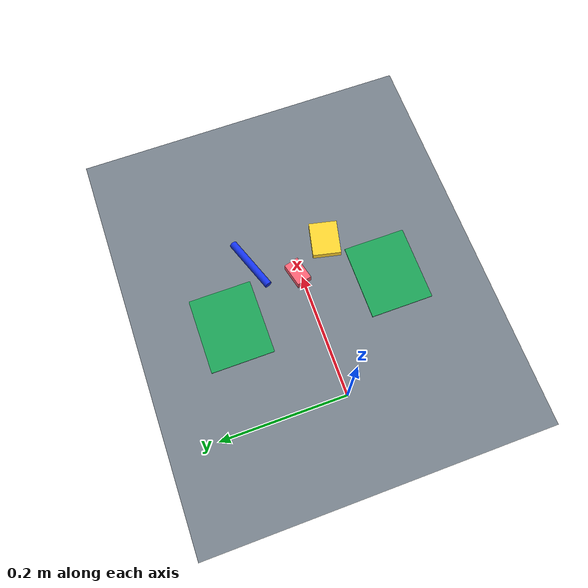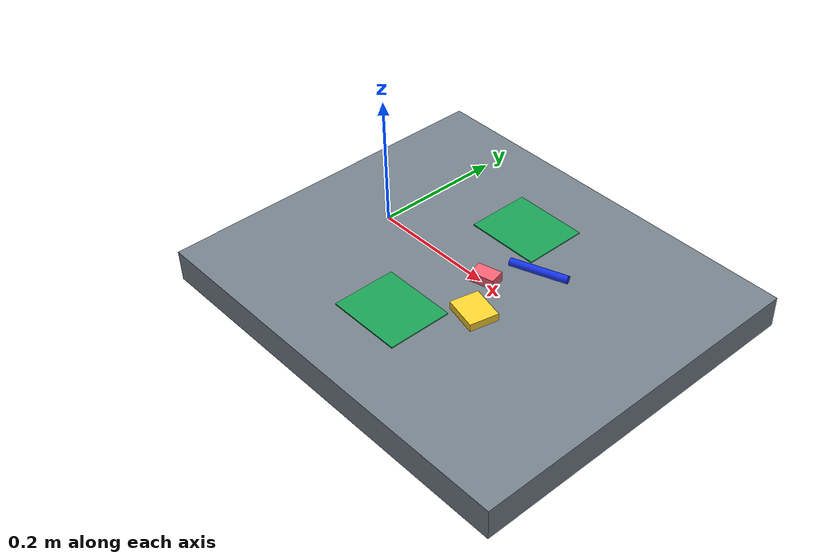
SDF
<?xml version="1.0"?>
<sdf version="1.6">
  <world name="desk_cleaning">
    <gravity>0 0 -9.81</gravity>
    <physics type="ode">
      <real_time_update_rate>1000</real_time_update_rate>
      <max_step_size>0.001</max_step_size>
    </physics>
    <scene>
      <ambient>0.55 0.55 0.55 1</ambient>
      <background>0.82 0.86 0.90 1</background>
      <shadows>true</shadows>
    </scene>
    <light name="desk_light" type="directional">
      <pose>0 0 1.5 0 0 0</pose>
      <diffuse>0.9 0.9 0.9 1</diffuse>
      <specular>0.2 0.2 0.2 1</specular>
      <direction>-0.25 0.15 -1</direction>
    </light>

    <model name="desk">
      <static>true</static>
      <link name="top">
        <pose>0.18 0 -0.025 0 0 0</pose>
        <collision name="collision"><geometry><box><size>0.65 0.55 0.05</size></box></geometry></collision>
        <visual name="visual">
          <geometry><box><size>0.65 0.55 0.05</size></box></geometry>
          <material><ambient>0.34 0.37 0.40 1</ambient><diffuse>0.46 0.50 0.54 1</diffuse></material>
        </visual>
      </link>
    </model>

    <model name="collection_pad_right">
      <static>true</static>
      <link name="pad">
        <pose>0.16 -0.13 0.001 0 0 0</pose>
        <visual name="visual">
          <geometry><box><size>0.12 0.10 0.002</size></box></geometry>
          <material><ambient>0.08 0.42 0.25 1</ambient><diffuse>0.10 0.62 0.33 1</diffuse></material>
        </visual>
      </link>
    </model>
    <model name="collection_pad_left">
      <static>true</static>
      <link name="pad">
        <pose>0.16 0.13 0.001 0 0 0</pose>
        <visual name="visual">
          <geometry><box><size>0.12 0.10 0.002</size></box></geometry>
          <material><ambient>0.08 0.42 0.25 1</ambient><diffuse>0.10 0.62 0.33 1</diffuse></material>
        </visual>
      </link>
    </model>

    <model name="desk_pen">
      <pose>0.245 0.070 0.007 0 1.5708 0.35</pose>
      <link name="body">
        <inertial><mass>0.012</mass><inertia><ixx>0.000009</ixx><iyy>0.000009</iyy><izz>0.000001</izz></inertia></inertial>
        <collision name="collision"><geometry><cylinder><radius>0.006</radius><length>0.09</length></cylinder></geometry></collision>
        <visual name="visual"><geometry><cylinder><radius>0.006</radius><length>0.09</length></cylinder></geometry><material><ambient>0.05 0.12 0.78 1</ambient><diffuse>0.08 0.20 0.92 1</diffuse></material></visual>
      </link>
    </model>
    <model name="desk_eraser">
      <pose>0.205 0.005 0.009 0 0 0.25</pose>
      <link name="body">
        <inertial><mass>0.025</mass><inertia><ixx>0.000003</ixx><iyy>0.000005</iyy><izz>0.000007</izz></inertia></inertial>
        <collision name="collision"><geometry><box><size>0.038 0.024 0.016</size></box></geometry></collision>
        <visual name="visual"><geometry><box><size>0.038 0.024 0.016</size></box></geometry><material><ambient>0.90 0.28 0.36 1</ambient><diffuse>0.96 0.38 0.45 1</diffuse></material></visual>
      </link>
    </model>
    <model name="desk_notebook">
      <pose>0.245 -0.055 0.007 0 0 -0.22</pose>
      <link name="body">
        <inertial><mass>0.045</mass><inertia><ixx>0.000010</ixx><iyy>0.000014</iyy><izz>0.000022</izz></inertia></inertial>
        <collision name="collision"><geometry><box><size>0.055 0.045 0.012</size></box></geometry></collision>
        <visual name="visual"><geometry><box><size>0.055 0.045 0.012</size></box></geometry><material><ambient>0.95 0.72 0.12 1</ambient><diffuse>1.0 0.82 0.18 1</diffuse></material></visual>
      </link>
    </model>

  </world>
</sdf>
